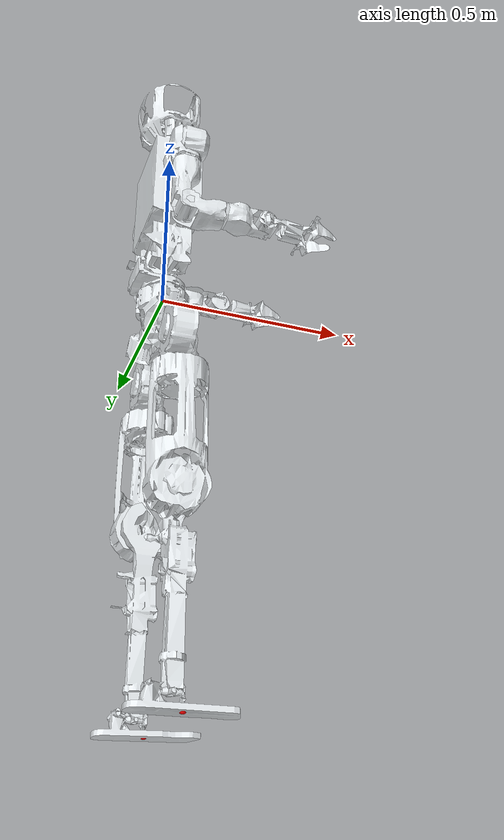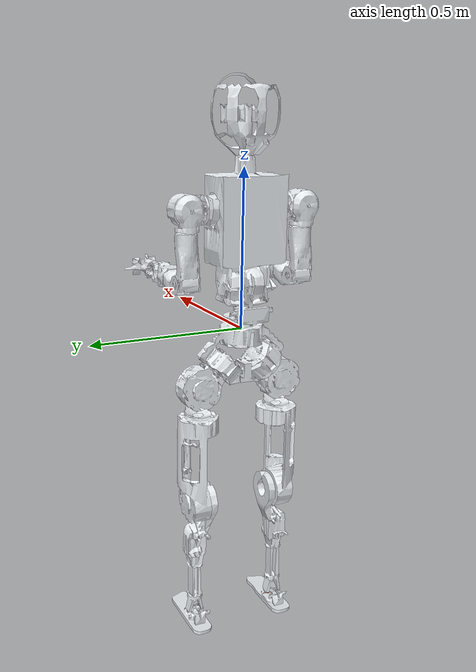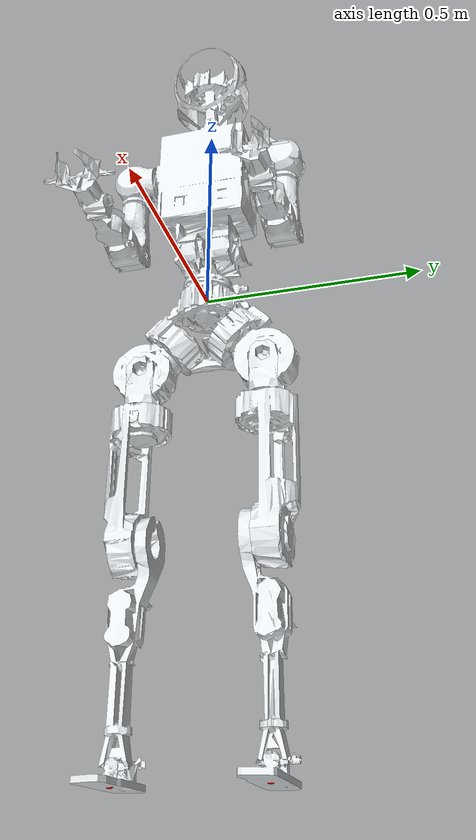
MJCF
<mujoco model="JLJBot_collision">
  <compiler angle="radian" meshdir="assets/" />
  <asset>
    <mesh name="base_link" file="base_link.STL" />
    <mesh name="waist_yaw_link" file="waist_yaw_link.STL" />
    <mesh name="waist_roll_link" file="waist_roll_link.STL" />
    <mesh name="waist_pitch_link" file="waist_pitch_link.STL" />
    <mesh name="left_shoulder_pitch_link" file="left_shoulder_pitch_link.STL" />
    <mesh name="left_shoulder_roll_link" file="left_shoulder_roll_link.STL" />
    <mesh name="left_shoulder_yaw_link" file="left_shoulder_yaw_link.STL" />
    <mesh name="left_elbow_link" file="left_elbow_link.STL" />
    <mesh name="left_wrist_roll_link" file="left_wrist_roll_link.STL" />
    <mesh name="left_wrist_pitch_link" file="left_wrist_pitch_link.STL" />
    <mesh name="left_wrist_yaw_link" file="left_wrist_yaw_link.STL" />
    <mesh name="right_shoulder_pitch_link" file="right_shoulder_pitch_link.STL" />
    <mesh name="right_shoulder_roll_link" file="right_shoulder_roll_link.STL" />
    <mesh name="right_shoulder_yaw_link" file="right_shoulder_yaw_link.STL" />
    <mesh name="right_elbow_link" file="right_elbow_link.STL" />
    <mesh name="right_wrist_roll_link" file="right_wrist_roll_link.STL" />
    <mesh name="right_wrist_pitch_link" file="right_wrist_pitch_link.STL" />
    <mesh name="right_wrist_yaw_link" file="right_wrist_yaw_link.STL" />
    <mesh name="left_hip_pitch_link" file="left_hip_pitch_link.STL" />
    <mesh name="left_hip_roll_link" file="left_hip_roll_link.STL" />
    <mesh name="left_hip_yaw_link" file="left_hip_yaw_link.STL" />
    <mesh name="left_knee_link" file="left_knee_link.STL" />
    <mesh name="left_ankle_pitch_link" file="left_ankle_pitch_link.STL" />
    <mesh name="left_ankle_roll_link" file="left_ankle_roll_link.STL" />
    <mesh name="right_hip_pitch_link" file="right_hip_pitch_link.STL" />
    <mesh name="right_hip_roll_link" file="right_hip_roll_link.STL" />
    <mesh name="right_hip_yaw_link" file="right_hip_yaw_link.STL" />
    <mesh name="right_knee_link" file="right_knee_link.STL" />
    <mesh name="right_ankle_pitch_link" file="right_ankle_pitch_link.STL" />
    <mesh name="right_ankle_roll_link" file="right_ankle_roll_link.STL" />
    <material name="base_link_mat" rgba="0.898 0.9176 0.9294 1" specular="0" />
    <material name="waist_yaw_link_mat" rgba="0.898 0.9176 0.9294 1" specular="0" />
    <material name="waist_roll_link_mat" rgba="0.898 0.9176 0.9294 1" specular="0" />
    <material name="waist_pitch_link_mat" rgba="0.898 0.9176 0.9294 1" specular="0" />
    <material name="left_shoulder_pitch_link_mat" rgba="0.898 0.9176 0.9294 1" specular="0" />
    <material name="left_shoulder_roll_link_mat" rgba="0.898 0.9176 0.9294 1" specular="0" />
    <material name="left_shoulder_yaw_link_mat" rgba="0.898 0.9176 0.9294 1" specular="0" />
    <material name="left_elbow_link_mat" rgba="0.898 0.9176 0.9294 1" specular="0" />
    <material name="left_wrist_roll_link_mat" rgba="0.898 0.9176 0.9294 1" specular="0" />
    <material name="left_wrist_pitch_link_mat" rgba="0.898 0.9176 0.9294 1" specular="0" />
    <material name="left_wrist_yaw_link_mat" rgba="0.898 0.9176 0.9294 1" specular="0" />
    <material name="right_shoulder_pitch_link_mat" rgba="0.898 0.9176 0.9294 1" specular="0" />
    <material name="right_shoulder_roll_link_mat" rgba="0.898 0.9176 0.9294 1" specular="0" />
    <material name="right_shoulder_yaw_link_mat" rgba="0.898 0.9176 0.9294 1" specular="0" />
    <material name="right_elbow_link_mat" rgba="0.898 0.9176 0.9294 1" specular="0" />
    <material name="right_wrist_roll_link_mat" rgba="0.898 0.9176 0.9294 1" specular="0" />
    <material name="right_wrist_pitch_link_mat" rgba="0.898 0.9176 0.9294 1" specular="0" />
    <material name="right_wrist_yaw_link_mat" rgba="0.898 0.9176 0.9294 1" specular="0" />
    <material name="left_hip_pitch_link_mat" rgba="0.898 0.9176 0.9294 1" specular="0" />
    <material name="left_hip_roll_link_mat" rgba="0.898 0.9176 0.9294 1" specular="0" />
    <material name="left_hip_yaw_link_mat" rgba="0.898 0.9176 0.9294 1" specular="0" />
    <material name="left_knee_link_mat" rgba="0.898 0.9176 0.9294 1" specular="0" />
    <material name="left_ankle_pitch_link_mat" rgba="0.898 0.9176 0.9294 1" specular="0" />
    <material name="left_ankle_roll_link_mat" rgba="0.898 0.9176 0.9294 1" specular="0" />
    <material name="right_hip_pitch_link_mat" rgba="0.898 0.9176 0.9294 1" specular="0" />
    <material name="right_hip_roll_link_mat" rgba="0.898 0.9176 0.9294 1" specular="0" />
    <material name="right_hip_yaw_link_mat" rgba="0.898 0.9176 0.9294 1" specular="0" />
    <material name="right_knee_link_mat" rgba="0.898 0.9176 0.9294 1" specular="0" />
    <material name="right_ankle_pitch_link_mat" rgba="0.898 0.9176 0.9294 1" specular="0" />
    <material name="right_ankle_roll_link_mat" rgba="0.898 0.9176 0.9294 1" specular="0" />
  </asset>

  <worldbody>
    <body name="base_link" pos="0 0 0">
      <freejoint/>
      <inertial pos="-0.0009132 0.000016 -0.0779084" mass="6.4215738" fullinertia="0.0186218 0.0112883 0.0157697 -0.0000004 -0.0000523 -0.0000001"/>
      <geom pos="0 0 0" group="1" contype="0" conaffinity="0" material="base_link_mat" type="mesh" mesh="base_link" />
      <geom name="base_link_collision" pos="0 0 0" rgba="0.9373 0.2667 0.2667 1" group="3" contype="1" conaffinity="1" type="mesh" mesh="base_link" />
      <site name="imu_in_base_link" size="0.01" pos="-0.01 0 -0.09" group="5" rgba="1 0 0 1" />
      <body name="waist_yaw_link" pos="0 0 0.007">
        <joint name="waist_yaw_joint" type="hinge" axis="0 0 1" limited="true" range="-1.57 1.57" damping="0" frictionloss="0"/>
        <inertial pos="-0.0259888 0 0.0360763" mass="0.9641464" fullinertia="0.0005716 0.0006786 0.001122 0 0.0000066 0"/>
        <geom pos="0 0 0" group="1" contype="0" conaffinity="0" material="waist_yaw_link_mat" type="mesh" mesh="waist_yaw_link" />
        <body name="waist_roll_link" pos="-0.027 0 0.062">
          <joint name="waist_roll_joint" type="hinge" axis="1 0 0" limited="true" range="-0.5 0.5" damping="0" frictionloss="0"/>
          <inertial pos="0.0269999 0 -0.0000001" mass="0.0365367" diaginertia="0.0000058 0.0000043 0.0000088"/>
          <geom pos="0 0 0" group="1" contype="0" conaffinity="0" material="waist_roll_link_mat" type="mesh" mesh="waist_roll_link" />
          <body name="waist_pitch_link" pos="0.027 0 0.008">
            <joint name="waist_pitch_joint" type="hinge" axis="0 -1 0" limited="true" range="-0.5 0.5" damping="0" frictionloss="0"/>
            <inertial pos="-0.0000882 -0.0012021 0.2397531" mass="16.616511" fullinertia="0.049348 0.0333801 0.0388607 0.000152 0.0001588 0.0000426"/>
            <geom pos="0 0 0" group="1" contype="0" conaffinity="0" material="waist_pitch_link_mat" type="mesh" mesh="waist_pitch_link" />
            <geom name="waist_pitch_link_collision" pos="0 0 0.2" rgba="0.9373 0.2667 0.2667 1" group="3" contype="1" conaffinity="1" type="box" size="0.07 0.1 0.2" />
            <body name="left_shoulder_pitch_link" pos="0 0.1305 0.302">
              <joint name="left_shoulder_pitch_joint" type="hinge" axis="0 1 0" limited="true" range="-3.42 1.46" damping="0" frictionloss="0"/>
              <inertial pos="0.0024282 0.0547449 -0.0000058" mass="1.2449878" fullinertia="0.0013746 0.0009856 0.0009587 -0.0000114 0 0.0000001"/>
              <geom pos="0 0 0" group="1" contype="0" conaffinity="0" material="left_shoulder_pitch_link_mat" type="mesh" mesh="left_shoulder_pitch_link" />
              <geom name="left_shoulder_pitch_link_collision" pos="0 0 0" rgba="0.9373 0.2667 0.2667 1" group="3" contype="1" conaffinity="1" type="mesh" mesh="left_shoulder_pitch_link" />
              <body name="left_shoulder_roll_link" pos="-0.0301 0.06 0">
                <joint name="left_shoulder_roll_joint" type="hinge" axis="-1 0 0" limited="true" range="-3.14 0.16" damping="0" frictionloss="0"/>
                <inertial pos="0.008495 -0.0000009 -0.0331499" mass="0.2128042" fullinertia="0.0001766 0.0001176 0.0001088 0 0.0000069 0"/>
                <geom pos="0 0 0" group="1" contype="0" conaffinity="0" material="left_shoulder_roll_link_mat" type="mesh" mesh="left_shoulder_roll_link" />
                <geom name="left_shoulder_roll_link_collision" pos="0 0 0" rgba="0.9373 0.2667 0.2667 1" group="3" contype="1" conaffinity="1" type="mesh" mesh="left_shoulder_roll_link" />
                <body name="left_shoulder_yaw_link" pos="0.0301 0 -0.06625">
                  <joint name="left_shoulder_yaw_joint" type="hinge" axis="0 0 -1" limited="true" range="-1.669 1.499" damping="0" frictionloss="0"/>
                  <inertial pos="-0.0020457 -0.0002605 -0.0888872" mass="0.9982076" fullinertia="0.0008128 0.0007285 0.0004578 -0.0000008 -0.0000394 -0.0000025"/>
                  <geom pos="0 0 0" group="1" contype="0" conaffinity="0" material="left_shoulder_yaw_link_mat" type="mesh" mesh="left_shoulder_yaw_link" />
                  <geom name="left_shoulder_yaw_link_collision" pos="0 0 0" rgba="0.9373 0.2667 0.2667 1" group="3" contype="1" conaffinity="1" type="mesh" mesh="left_shoulder_yaw_link" />
                  <body name="left_elbow_link" pos="0 -0.03715 -0.15375" quat="0.7071069 0 -0.7071067 0">
                    <joint name="left_elbow_joint" type="hinge" axis="0 -1 0" limited="true" range="-1.44 0.99" damping="0" frictionloss="0"/>
                    <inertial pos="-0.0028429 0.0359582 -0.0635571" mass="0.4915058" fullinertia="0.000325 0.0002595 0.0002289 0.0000018 0.0000024 0.0000003"/>
                    <geom pos="0 0 0" group="1" contype="0" conaffinity="0" material="left_elbow_link_mat" type="mesh" mesh="left_elbow_link" />
                    <geom name="left_elbow_link_collision" pos="0 0 0" rgba="0.9373 0.2667 0.2667 1" group="3" contype="1" conaffinity="1" type="mesh" mesh="left_elbow_link" />
                    <body name="left_wrist_roll_link" pos="0 0.0371 -0.0955">
                      <joint name="left_wrist_roll_joint" type="hinge" axis="0 0 -1" limited="true" range="-1.739 1.404" damping="0" frictionloss="0"/>
                      <inertial pos="-0.0034773 0.0008804 -0.042785" mass="0.4827279" fullinertia="0.0002814 0.0002252 0.0001978 0.0000076 0.0000008 0.0000042"/>
                      <geom pos="0 0 0" group="1" contype="0" conaffinity="0" material="left_wrist_roll_link_mat" type="mesh" mesh="left_wrist_roll_link" />
                      <geom name="left_wrist_roll_link_collision" pos="0 0 0" rgba="0.9373 0.2667 0.2667 1" group="3" contype="1" conaffinity="1" type="mesh" mesh="left_wrist_roll_link" />
                      <body name="left_wrist_pitch_link" pos="0.038 0 -0.1205" quat="0.9238796 -0.3826834 0 0">
                        <joint name="left_wrist_pitch_joint" type="hinge" axis="1 0 0" limited="true" range="-0.8619 0.7089" damping="0" frictionloss="0"/>
                        <inertial pos="-0.037068 -0.0003253 -0.0002305" mass="0.3518105" fullinertia="0.000118 0.0001276 0.0001297 -0.0000005 -0.0000006 0.0000099"/>
                        <geom pos="0 0 0" group="1" contype="0" conaffinity="0" material="left_wrist_pitch_link_mat" type="mesh" mesh="left_wrist_pitch_link" />
                        <geom name="left_wrist_pitch_link_collision" pos="0 0 0" rgba="0.9373 0.2667 0.2667 1" group="3" contype="1" conaffinity="1" type="mesh" mesh="left_wrist_pitch_link" />
                        <body name="left_wrist_yaw_link" pos="-0.0375 0.023067 0.025654">
                          <joint name="left_wrist_yaw_joint" type="hinge" axis="0 0.66862 0.7436" limited="true" range="-1.4532 1.6908" damping="0" frictionloss="0"/>
                          <inertial pos="0.0000769 0.0455839 -0.0852283" mass="0.687417" fullinertia="0.0002953 0.0002841 0.0002814 -0.0000005 0.0000006 -0.0000191"/>
                          <geom pos="0 0 0" group="1" contype="0" conaffinity="0" material="left_wrist_yaw_link_mat" type="mesh" mesh="left_wrist_yaw_link" />
                        </body>
                      </body>
                    </body>
                  </body>
                </body>
              </body>
            </body>
            <body name="right_shoulder_pitch_link" pos="0 -0.1405 0.302">
              <joint name="right_shoulder_pitch_joint" type="hinge" axis="0 -1 0" limited="true" range="-1.3742 3.4876" damping="0" frictionloss="0"/>
              <inertial pos="0.0024282 -0.0547449 0.0000058" mass="1.2449878" fullinertia="0.0013746 0.0009856 0.0009587 0.0000114 0 0.0000001"/>
              <geom pos="0 0 0" group="1" contype="0" conaffinity="0" material="right_shoulder_pitch_link_mat" type="mesh" mesh="right_shoulder_pitch_link" />
              <geom name="right_shoulder_pitch_link_collision" pos="0 0 0" rgba="0.9373 0.2667 0.2667 1" group="3" contype="1" conaffinity="1" type="mesh" mesh="right_shoulder_pitch_link" />
              <body name="right_shoulder_roll_link" pos="-0.0301 -0.06 0">
                <joint name="right_shoulder_roll_joint" type="hinge" axis="-1 0 0" limited="true" range="-0.2225 3.1721" damping="0" frictionloss="0"/>
                <inertial pos="0.008495 -0.000001 -0.0331499" mass="0.2128043" fullinertia="0.0001766 0.0001176 0.0001088 0 0.0000069 0"/>
                <geom pos="0 0 0" group="1" contype="0" conaffinity="0" material="right_shoulder_roll_link_mat" type="mesh" mesh="right_shoulder_roll_link" />
                <geom name="right_shoulder_roll_link_collision" pos="0 0 0" rgba="0.9373 0.2667 0.2667 1" group="3" contype="1" conaffinity="1" type="mesh" mesh="right_shoulder_roll_link" />
                <body name="right_shoulder_yaw_link" pos="0.0301 0 -0.06625">
                  <joint name="right_shoulder_yaw_joint" type="hinge" axis="0 0 -1" limited="true" range="-1.5936 1.5474" damping="0" frictionloss="0"/>
                  <inertial pos="-0.0020458 -0.0002605 -0.0888872" mass="0.9982116" fullinertia="0.0008128 0.0007285 0.0004578 -0.0000008 -0.0000394 -0.0000025"/>
                  <geom pos="0 0 0" group="1" contype="0" conaffinity="0" material="right_shoulder_yaw_link_mat" type="mesh" mesh="right_shoulder_yaw_link" />
                  <geom name="right_shoulder_yaw_link_collision" pos="0 0 0" rgba="0.9373 0.2667 0.2667 1" group="3" contype="1" conaffinity="1" type="mesh" mesh="right_shoulder_yaw_link" />
                  <body name="right_elbow_link" pos="0 -0.03155 -0.15375" quat="0.7071408 0 -0.7070727 0">
                    <joint name="right_elbow_joint" type="hinge" axis="0 -1 0" limited="true" range="-1.5417 0.9919" damping="0" frictionloss="0"/>
                    <inertial pos="-0.0028429 0.0303582 -0.0635571" mass="0.4915058" fullinertia="0.000325 0.0002595 0.0002289 0.0000018 0.0000024 0.0000003"/>
                    <geom pos="0 0 0" group="1" contype="0" conaffinity="0" material="right_elbow_link_mat" type="mesh" mesh="right_elbow_link" />
                    <geom name="right_elbow_link_collision" pos="0 0 0" rgba="0.9373 0.2667 0.2667 1" group="3" contype="1" conaffinity="1" type="mesh" mesh="right_elbow_link" />
                    <body name="right_wrist_roll_link" pos="0 0.0315 -0.0955">
                      <joint name="right_wrist_roll_joint" type="hinge" axis="0 0 -1" limited="true" range="-1.5726 1.5627" damping="0" frictionloss="0"/>
                      <inertial pos="-0.0034762 -0.0008802 -0.0427861" mass="0.4827706" fullinertia="0.0002814 0.0002252 0.0001978 -0.0000076 0.0000008 -0.0000042"/>
                      <geom pos="0 0 0" group="1" contype="0" conaffinity="0" material="right_wrist_roll_link_mat" type="mesh" mesh="right_wrist_roll_link" />
                      <geom name="right_wrist_roll_link_collision" pos="0 0 0" rgba="0.9373 0.2667 0.2667 1" group="3" contype="1" conaffinity="1" type="mesh" mesh="right_wrist_roll_link" />
                      <body name="right_wrist_pitch_link" pos="0.0375 0 -0.1205" quat="0.9238796 0.3826834 0 0">
                        <joint name="right_wrist_pitch_joint" type="hinge" axis="1 0 0" limited="true" range="-0.628 0.9473" damping="0" frictionloss="0"/>
                        <inertial pos="-0.0368322 0.000356 -0.0002015" mass="0.351925" fullinertia="0.000118 0.0001298 0.0001276 -0.0000006 0.0000005 -0.0000098"/>
                        <geom pos="0 0 0" group="1" contype="0" conaffinity="0" material="right_wrist_pitch_link_mat" type="mesh" mesh="right_wrist_pitch_link" />
                        <geom name="right_wrist_pitch_link_collision" pos="0 0 0" rgba="0.9373 0.2667 0.2667 1" group="3" contype="1" conaffinity="1" type="mesh" mesh="right_wrist_pitch_link" />
                        <body name="right_wrist_yaw_link" pos="-0.0375 -0.015261 0.013688">
                          <joint name="right_wrist_yaw_joint" type="hinge" axis="0 -0.74443 0.6677" limited="true" range="-1.808 1.328" damping="0" frictionloss="0"/>
                          <inertial pos="0.0000888 -0.0466236 -0.0802815" mass="0.689032" fullinertia="0.0002959 0.0002797 0.0002852 -0.000001 0.000002 0.0000192"/>
                          <geom pos="0 0 0" group="1" contype="0" conaffinity="0" material="right_wrist_yaw_link_mat" type="mesh" mesh="right_wrist_yaw_link" />
                        </body>
                      </body>
                    </body>
                  </body>
                </body>
              </body>
            </body>
          </body>
        </body>
      </body>
      <body name="left_hip_pitch_link" pos="0 0.088214 -0.12639">
        <joint name="left_hip_pitch_joint" type="hinge" axis="0 0.70711 -0.70711" limited="true" range="-2.384 2.466" damping="0" frictionloss="0"/>
        <inertial pos="0.0035805 0.0540167 -0.053752" mass="2.0704946" fullinertia="0.003699 0.0023631 0.0023682 -0.0000151 0.0000149 -0.0004567"/>
        <geom pos="0 0 0" group="1" contype="0" conaffinity="0" material="left_hip_pitch_link_mat" type="mesh" mesh="left_hip_pitch_link" />
        <geom name="left_hip_pitch_link_collision" pos="0 0.05 -0.05" quat="0.7073883 0 0.7068252 0" rgba="0.9373 0.2667 0.2667 1" group="3" contype="1" conaffinity="1" type="cylinder" size="0.06 0.03" />
        <body name="left_hip_roll_link" pos="0.027 0.055861 -0.055861">
          <joint name="left_hip_roll_joint" type="hinge" axis="1 0 0" limited="true" range="-1.165 2.465" damping="0" frictionloss="0"/>
          <inertial pos="0.0017332 -0.0000073 -0.052578" mass="0.4695347" fullinertia="0.0010247 0.0010028 0.0003931 0 -0.0001714 -0.0000001"/>
          <geom pos="0 0 0" group="1" contype="0" conaffinity="0" material="left_hip_roll_link_mat" type="mesh" mesh="left_hip_roll_link" />
          <geom name="left_hip_roll_link_collision" pos="0 0 0" rgba="0.9373 0.2667 0.2667 1" group="3" contype="1" conaffinity="1" type="mesh" mesh="left_hip_roll_link" />
          <body name="left_hip_yaw_link" pos="-0.015 0 -0.105">
            <joint name="left_hip_yaw_joint" type="hinge" axis="0 0 -1" limited="true" range="-3.14 3.14" damping="0" frictionloss="0"/>
            <inertial pos="0.0000384 0.0106394 -0.1631784" mass="4.8993124" fullinertia="0.0057826 0.0097895 0.0088616 -0.0000083 0.000007 -0.0001901"/>
            <geom pos="0 0 0" group="1" contype="0" conaffinity="0" material="left_hip_yaw_link_mat" type="mesh" mesh="left_hip_yaw_link" />
            <geom name="left_hip_yaw_link_collision" pos="0 0 0" rgba="0.9373 0.2667 0.2667 1" group="3" contype="1" conaffinity="1" type="mesh" mesh="left_hip_yaw_link" />
            <body name="left_knee_link" pos="0 -0.012 -0.301">
              <joint name="left_knee_joint" type="hinge" axis="0 -1 0" limited="true" range="-1.699 1.997" damping="0" frictionloss="0"/>
              <inertial pos="0.0047746 0.0104878 -0.1607825" mass="2.0978379" fullinertia="0.0084628 0.0083387 0.0014631 0.000008 0.0000303 0.0014205"/>
              <geom pos="0 0 0" group="1" contype="0" conaffinity="0" material="left_knee_link_mat" type="mesh" mesh="left_knee_link" />
              <geom name="left_knee_link_collision" pos="0 0 0" rgba="0.9373 0.2667 0.2667 1" group="3" contype="1" conaffinity="1" type="mesh" mesh="left_knee_link" />
              <body name="left_ankle_pitch_link" pos="0.007722 -0.0037 -0.42591">
                <joint name="left_ankle_pitch_joint" type="hinge" axis="0 -1 0" limited="true" range="-0.45 0.45" damping="0" frictionloss="0"/>
                <inertial pos="-0.0000001 0.0257 0.0000001" mass="0.0365367" fullinertia="0.0000058 0.0000043 0.0000088 0 -0.0000001 0"/>
                <geom pos="0 0 0" group="1" contype="0" conaffinity="0" material="left_ankle_pitch_link_mat" type="mesh" mesh="left_ankle_pitch_link" />
                <geom name="left_ankle_pitch_link_collision" pos="0 0 0" rgba="0.9373 0.2667 0.2667 1" group="3" contype="1" conaffinity="1" type="mesh" mesh="left_ankle_pitch_link" />
                <body name="left_ankle_roll_link" pos="0.023992 0.0257 0.0006035">
                  <site name="left_foot" size="0.01" pos="0 0 -0.03" rgba="1 0 0 1"/>
                  <joint name="left_ankle_roll_joint" type="hinge" axis="1 0 0" limited="true" range="-0.25 0.25" damping="0" frictionloss="0"/>
                  <inertial pos="-0.0114404 0.0000497 -0.0253569" mass="0.6753837" fullinertia="0.0002449 0.002171 0.0023523 0.0000064 -0.0000551 0.0000002"/>
                  <geom pos="0 0 0" group="1" contype="0" conaffinity="0" material="left_ankle_roll_link_mat" type="mesh" mesh="left_ankle_roll_link" />
                  <geom name="left_foot1_collision" pos="-0.1 0.03 -0.03" rgba="0.9373 0.2667 0.2667 1" group="3" contype="1" conaffinity="1" type="sphere" size="0.005" />
                  <geom name="left_foot2_collision" pos="-0.1 -0.03 -0.03" rgba="0.9373 0.2667 0.2667 1" group="3" contype="1" conaffinity="1" type="sphere" size="0.005" />
                  <geom name="left_foot3_collision" pos="0.1 0.03 -0.03" rgba="0.9373 0.2667 0.2667 1" group="3" contype="1" conaffinity="1" type="sphere" size="0.005" />
                  <geom name="left_foot4_collision" pos="0.11 -0.03 -0.03" rgba="0.9373 0.2667 0.2667 1" group="3" contype="1" conaffinity="1" type="sphere" size="0.005" />
                </body>
              </body>
            </body>
          </body>
        </body>
      </body>
      <body name="right_hip_pitch_link" pos="0 -0.083263 -0.12144">
        <joint name="right_hip_pitch_joint" type="hinge" axis="0 -0.70711 -0.70711" limited="true" range="-1.175 2.84" damping="0" frictionloss="0"/>
        <inertial pos="0.003577 -0.0589637 -0.0587112" mass="2.0699965" fullinertia="0.0036971 0.0023675 0.0023618 0.0000153 0.0000148 0.0004558"/>
        <geom pos="0 0 0" group="1" contype="0" conaffinity="0" material="right_hip_pitch_link_mat" type="mesh" mesh="right_hip_pitch_link" />
        <geom name="right_hip_pitch_link_collision" pos="0 -0.06 -0.05" quat="0.7073883 0 0.7068252 0" rgba="0.9373 0.2667 0.2667 1" group="3" contype="1" conaffinity="1" type="cylinder" size="0.06 0.03" />
        <body name="right_hip_roll_link" pos="0.02 -0.060812 -0.06081">
          <joint name="right_hip_roll_joint" type="hinge" axis="1 0 0" limited="true" range="-2.506 1.043" damping="0" frictionloss="0"/>
          <inertial pos="0.0087332 -0.0000069 -0.052579" mass="0.4695347" fullinertia="0.0010247 0.0010028 0.0003931 0 -0.0001714 -0.0000001"/>
          <geom pos="0 0 0" group="1" contype="0" conaffinity="0" material="right_hip_roll_link_mat" type="mesh" mesh="right_hip_roll_link" />
          <geom name="right_hip_roll_link_collision" pos="0 0 0" rgba="0.9373 0.2667 0.2667 1" group="3" contype="1" conaffinity="1" type="mesh" mesh="right_hip_roll_link" />
          <body name="right_hip_yaw_link" pos="-0.008 0 -0.104">
            <joint name="right_hip_yaw_joint" type="hinge" axis="0 0 -1" limited="true" range="-3.14 3.15" damping="0" frictionloss="0"/>
            <inertial pos="-0.0000385 -0.0106489 -0.1642971" mass="4.8951529" fullinertia="0.0057824 0.0097895 0.0088615 -0.0000083 -0.000007 0.0001901"/>
            <geom pos="0 0 0" group="1" contype="0" conaffinity="0" material="right_hip_yaw_link_mat" type="mesh" mesh="right_hip_yaw_link" />
            <geom name="right_hip_yaw_link_collision" pos="0 0 0" rgba="0.9373 0.2667 0.2667 1" group="3" contype="1" conaffinity="1" type="mesh" mesh="right_hip_yaw_link" />
            <body name="right_knee_link" pos="0 0.0062 -0.30201">
              <joint name="right_knee_joint" type="hinge" axis="0 1 0" limited="true" range="-2.0056 1.9842" damping="0" frictionloss="0"/>
              <inertial pos="0.0022851 -0.0042143 -0.1581595" mass="2.1310136" fullinertia="0.0086276 0.0085109 0.0014881 -0.0000292 -0.0000626 -0.001453"/>
              <geom pos="0 0 0" group="1" contype="0" conaffinity="0" material="right_knee_link_mat" type="mesh" mesh="right_knee_link" />
              <geom name="right_knee_link_collision" pos="0 0 0" rgba="0.9373 0.2667 0.2667 1" group="3" contype="1" conaffinity="1" type="mesh" mesh="right_knee_link" />
              <body name="right_ankle_pitch_link" pos="0.0030006 -0.0419 -0.42596">
                <joint name="right_ankle_pitch_joint" type="hinge" axis="0 1 0" limited="true" range="-0.45 0.45" damping="0" frictionloss="0"/>
                <inertial pos="0.0000001 0.0257 0.0000001" mass="0.0365367" diaginertia="0.0000058 0.0000043 0.0000088"/>
                <geom pos="0 0 0" group="1" contype="0" conaffinity="0" material="right_ankle_pitch_link_mat" type="mesh" mesh="right_ankle_pitch_link" />
                <geom name="right_ankle_pitch_link_collision" pos="0 0 0" rgba="0.9373 0.2667 0.2667 1" group="3" contype="1" conaffinity="1" type="mesh" mesh="right_ankle_pitch_link" />
                <body name="right_ankle_roll_link" pos="0.024 0.0257 0">
                  <site name="right_foot" size="0.01" pos="0 0 -0.03" rgba="1 0 0 1"/>
                  <joint name="right_ankle_roll_joint" type="hinge" axis="-1 0 0" limited="true" range="-0.25 0.25" damping="0" frictionloss="0"/>
                  <inertial pos="-0.01299 -0.0000665 -0.0250404" mass="0.6758881" fullinertia="0.0002437 0.0021644 0.0023471 -0.0000064 -0.0000021 0"/>
                  <geom pos="0 0 0" group="1" contype="0" conaffinity="0" material="right_ankle_roll_link_mat" type="mesh" mesh="right_ankle_roll_link" />
                  <geom name="right_foot1_collision" pos="-0.1 0.03 -0.03" rgba="0.9373 0.2667 0.2667 1" group="3" contype="1" conaffinity="1" type="sphere" size="0.005" />
                  <geom name="right_foot2_collision" pos="-0.1 -0.03 -0.03" rgba="0.9373 0.2667 0.2667 1" group="3" contype="1" conaffinity="1" type="sphere" size="0.005" />
                  <geom name="right_foot3_collision" pos="0.11 0.03 -0.03" rgba="0.9373 0.2667 0.2667 1" group="3" contype="1" conaffinity="1" type="sphere" size="0.005" />
                  <geom name="right_foot4_collision" pos="0.1 -0.03 -0.03" rgba="0.9373 0.2667 0.2667 1" group="3" contype="1" conaffinity="1" type="sphere" size="0.005" />
                </body>
              </body>
            </body>
          </body>
        </body>
      </body>
    </body>
  </worldbody>
  <actuator>
    <position name="waist_yaw_joint_servo" joint="waist_yaw_joint" kp="100" forcelimited="true" forcerange="-200 200" />
    <position name="waist_roll_joint_servo" joint="waist_roll_joint" kp="27" forcelimited="true" forcerange="-54 54" />
    <position name="waist_pitch_joint_servo" joint="waist_pitch_joint" kp="27" forcelimited="true" forcerange="-54 54" />
    <position name="left_shoulder_pitch_joint_servo" joint="left_shoulder_pitch_joint" kp="27" forcelimited="true" forcerange="-54 54" />
    <position name="left_shoulder_roll_joint_servo" joint="left_shoulder_roll_joint" kp="27" forcelimited="true" forcerange="-54 54" />
    <position name="left_shoulder_yaw_joint_servo" joint="left_shoulder_yaw_joint" kp="14" forcelimited="true" forcerange="-28 28" />
    <position name="left_elbow_joint_servo" joint="left_elbow_joint" kp="14" forcelimited="true" forcerange="-28 28" />
    <position name="left_wrist_roll_joint_servo" joint="left_wrist_roll_joint" kp="5" forcelimited="true" forcerange="-10 10" />
    <position name="left_wrist_pitch_joint_servo" joint="left_wrist_pitch_joint" kp="5" forcelimited="true" forcerange="-10 10" />
    <position name="left_wrist_yaw_joint_servo" joint="left_wrist_yaw_joint" kp="5" forcelimited="true" forcerange="-10 10" />
    <position name="right_shoulder_pitch_joint_servo" joint="right_shoulder_pitch_joint" kp="27" forcelimited="true" forcerange="-54 54" />
    <position name="right_shoulder_roll_joint_servo" joint="right_shoulder_roll_joint" kp="27" forcelimited="true" forcerange="-54 54" />
    <position name="right_shoulder_yaw_joint_servo" joint="right_shoulder_yaw_joint" kp="14" forcelimited="true" forcerange="-28 28" />
    <position name="right_elbow_joint_servo" joint="right_elbow_joint" kp="14" forcelimited="true" forcerange="-28 28" />
    <position name="right_wrist_roll_joint_servo" joint="right_wrist_roll_joint" kp="5" forcelimited="true" forcerange="-10 10" />
    <position name="right_wrist_pitch_joint_servo" joint="right_wrist_pitch_joint" kp="5" forcelimited="true" forcerange="-10 10" />
    <position name="right_wrist_yaw_joint_servo" joint="right_wrist_yaw_joint" kp="5" forcelimited="true" forcerange="-10 10" />
    <position name="left_hip_pitch_joint_servo" joint="left_hip_pitch_joint" kp="100" forcelimited="true" forcerange="-200 200" />
    <position name="left_hip_roll_joint_servo" joint="left_hip_roll_joint" kp="100" forcelimited="true" forcerange="-200 200" />
    <position name="left_hip_yaw_joint_servo" joint="left_hip_yaw_joint" kp="100" forcelimited="true" forcerange="-200 200" />
    <position name="left_knee_joint_servo" joint="left_knee_joint" kp="100" forcelimited="true" forcerange="-200 200" />
    <position name="left_ankle_pitch_joint_servo" joint="left_ankle_pitch_joint" kp="14" forcelimited="true" forcerange="-28 28" />
    <position name="left_ankle_roll_joint_servo" joint="left_ankle_roll_joint" kp="14" forcelimited="true" forcerange="-28 28" />
    <position name="right_hip_pitch_joint_servo" joint="right_hip_pitch_joint" kp="100" forcelimited="true" forcerange="-200 200" />
    <position name="right_hip_roll_joint_servo" joint="right_hip_roll_joint" kp="100" forcelimited="true" forcerange="-200 200" />
    <position name="right_hip_yaw_joint_servo" joint="right_hip_yaw_joint" kp="100" forcelimited="true" forcerange="-200 200" />
    <position name="right_knee_joint_servo" joint="right_knee_joint" kp="100" forcelimited="true" forcerange="-200 200" />
    <position name="right_ankle_pitch_joint_servo" joint="right_ankle_pitch_joint" kp="14" forcelimited="true" forcerange="-28 28" />
    <position name="right_ankle_roll_joint_servo" joint="right_ankle_roll_joint" kp="14" forcelimited="true" forcerange="-28 28" />
  </actuator>
  <sensor>
    <gyro name="imu_ang_vel" site="imu_in_base_link"/>
    <velocimeter name="imu_lin_vel" site="imu_in_base_link"/>
    <accelerometer name="imu_lin_acc" site="imu_in_base_link"/>
    <framezaxis name="imu_upvector" objtype="body" objname="world" reftype="site" refname="imu_in_base_link"/>
    <subtreeangmom name="root_angmom" body="base_link"/>
  </sensor>
</mujoco>
